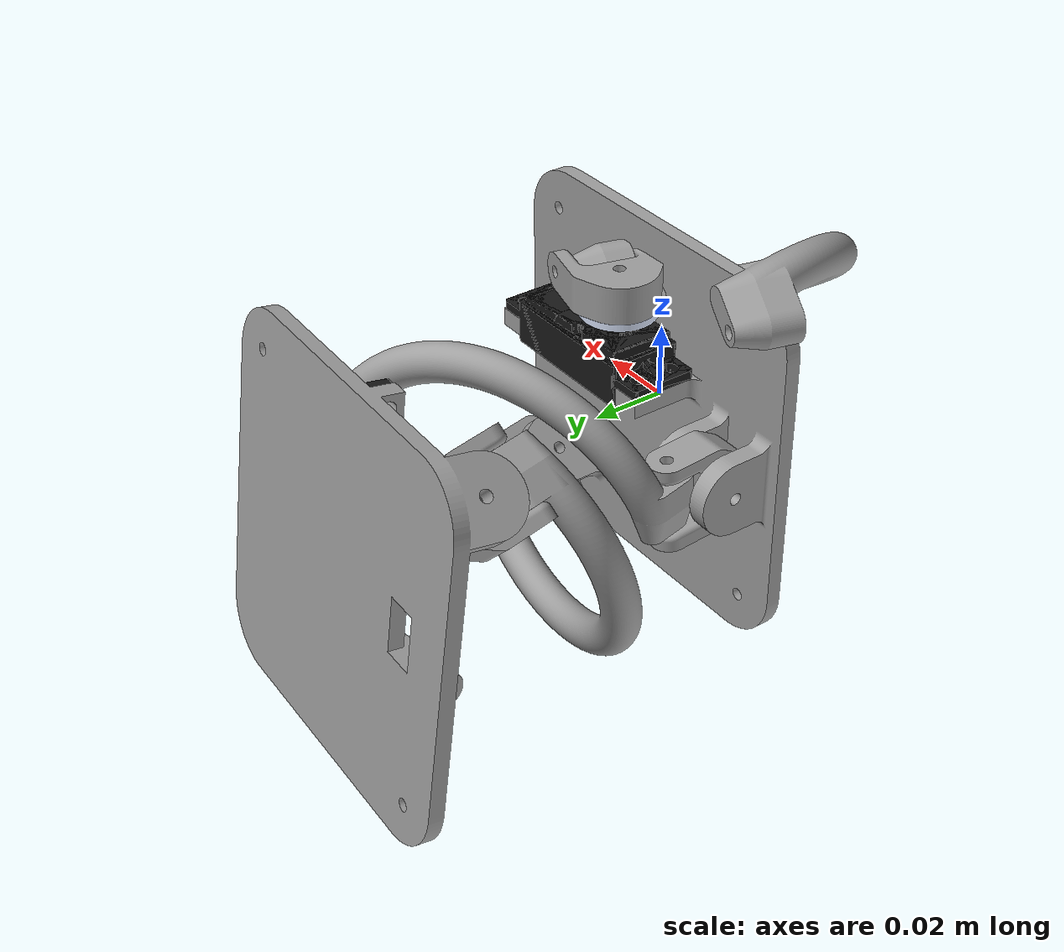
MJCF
<?xml version="1.0" ?>
<!-- Generated using onshape-to-robot -->
<!-- Onshape https://cad.onshape.com/documents/1f9c2954b6c1e4433dc4fb70/w/a7d17b54b83acd5ebc54338d/e/ec1e780a5db60bb6dd30ef9b -->
<mujoco model="my-robot">
  <compiler angle="radian" meshdir="assets" autolimits="true"/>
  <default>
    <default class="my-robot">
      <joint damping="0.01" frictionloss="0.01" armature="0.002"/>
      <position kp="50" dampratio="1"/>
      <default class="visual">
        <geom type="mesh" contype="0" conaffinity="0" group="2"/>
      </default>
      <default class="collision">
        <geom group="3"/>
      </default>
    </default>
  </default>
  <worldbody>
    <!-- Link fusioncomponent -->
    <body name="fusioncomponent" pos="0 0 0" quat="1 0 0 0" childclass="my-robot">
      <freejoint name="fusioncomponent_freejoint"/>
      <inertial pos="0 0 0" mass="0.12" fullinertia="0.00025 0.00025 0.00025 0 0 0"/>
      <!-- Part servo_motor_35kg_motor_v1 -->
      <geom type="mesh" class="visual" pos="0.00904239 0.014 -0.0174241" quat="0.707107 0.707107 -0 -0" mesh="servo_motor_35kg_motor_v1" material="servo_motor_35kg_motor_v1_material"/>
      <geom type="mesh" class="collision" pos="0.00904239 0.014 -0.0174241" quat="0.707107 0.707107 -0 -0" mesh="servo_motor_35kg_motor_v1" material="servo_motor_35kg_motor_v1_material"/>
      <!-- Part fusioncomponent -->
      <geom type="mesh" class="visual" pos="4.23865e-05 0.004 -0.000424131" quat="1 0 -0 0" mesh="fusioncomponent" material="fusioncomponent_material"/>
      <geom type="mesh" class="collision" pos="4.23865e-05 0.004 -0.000424131" quat="1 0 -0 0" mesh="fusioncomponent" material="fusioncomponent_material"/>
      <!-- Link fusioncomponent_2 -->
      <body name="fusioncomponent_2" pos="-0.0315576 0.014 -0.000424131" quat="0.0250809 0.706662 0.0250809 0.706662">
        <!-- Joint from fusioncomponent to fusioncomponent_2 -->
        <joint axis="0 0 1" name="10" type="hinge"/>
        <inertial pos="0 0 0" mass="0.08" fullinertia="0.00016 0.00016 0.00016 0 0 0"/>
        <!-- Part fusioncomponent_2 -->
        <geom type="mesh" class="visual" pos="-0 0.01 -0.0525" quat="0 0.92388 -0 0.382683" mesh="fusioncomponent__2" material="fusioncomponent__2_material"/>
        <geom type="mesh" class="collision" pos="-0 0.01 -0.0525" quat="0 0.92388 -0 0.382683" mesh="fusioncomponent__2" material="fusioncomponent__2_material"/>
        <!-- Link danda_v4 -->
        <body name="danda_v4" pos="-0.0075 -0.0109448 -0.005" quat="0.0568996 -0.704814 -0.0568996 0.704814">
          <!-- Joint from fusioncomponent_2 to danda_v4 -->
          <joint axis="0 0 1" name="9" type="hinge"/>
          <inertial pos="0 0 0" mass="0.05" fullinertia="0.0001 0.0001 0.0001 0 0 0"/>
          <!-- Part danda_v4 -->
          <geom type="mesh" class="visual" pos="-0.0365 0.0075 -0.0075" quat="1 0 -0 0" mesh="danda_v4" material="danda_v4_material"/>
          <geom type="mesh" class="collision" pos="-0.0365 0.0075 -0.0075" quat="1 0 -0 0" mesh="danda_v4" material="danda_v4_material"/>
        </body>
      </body>
      <!-- Link fusioncomponent_3 -->
      <body name="fusioncomponent_3" pos="0.0283974 0.014 -0.0287791" quat="0.921092 -0.0297031 -0.381529 0.0717096">
        <!-- Joint from fusioncomponent to fusioncomponent_3 -->
        <joint axis="0 0 1" name="6" type="hinge"/>
        <inertial pos="0 0 0" mass="0.08" fullinertia="0.00016 0.00016 0.00016 0 0 0"/>
        <!-- Part fusioncomponent_3 -->
        <geom type="mesh" class="visual" pos="-0 -0.01 0.0425" quat="0.92388 -0 0.382683 -0" mesh="fusioncomponent__2" material="fusioncomponent__2_material"/>
        <geom type="mesh" class="collision" pos="-0 -0.01 0.0425" quat="0.92388 -0 0.382683 -0" mesh="fusioncomponent__2" material="fusioncomponent__2_material"/>
        <!-- Link danda_support_v5 -->
        <body name="danda_support_v5" pos="0.0075 0.0125 -0.005" quat="0.706767 0.0219098 0.706767 0.0219098">
          <!-- Joint from fusioncomponent_3 to danda_support_v5 -->
          <joint axis="0 0 1" name="5" type="hinge"/>
          <inertial pos="0 0 0" mass="0.05" fullinertia="0.0001 0.0001 0.0001 0 0 0"/>
          <!-- Part danda_support_v5 -->
          <geom type="mesh" class="visual" pos="-0.045 0.0075 -0.0075" quat="1 -0 0 0" mesh="danda_support_v5" material="danda_support_v5_material"/>
          <geom type="mesh" class="collision" pos="-0.045 0.0075 -0.0075" quat="1 -0 0 0" mesh="danda_support_v5" material="danda_support_v5_material"/>
          <!-- Link fusioncomponent_4 -->
          <body name="fusioncomponent_4" pos="-0.09 0.055 -0" quat="0 1 0 0">
            <!-- Joint from danda_support_v5 to fusioncomponent_4 -->
            <joint axis="0 0 1" name="1" type="hinge"/>
            <inertial pos="0 0 0" mass="0.08" fullinertia="0.00016 0.00016 0.00016 0 0 0"/>
            <!-- Part fusioncomponent_4 -->
            <geom type="mesh" class="visual" pos="0.0475 -0.0225 0.0075" quat="0.382683 -0 0.92388 -0" mesh="fusioncomponent__2" material="fusioncomponent__2_material"/>
            <geom type="mesh" class="collision" pos="0.0475 -0.0225 0.0075" quat="0.382683 -0 0.92388 -0" mesh="fusioncomponent__2" material="fusioncomponent__2_material"/>
            <!-- Link fusioncomponent_5 -->
            <body name="fusioncomponent_5" pos="0.005 -0.0125 0.0075" quat="0 0.707107 0 -0.707107">
              <!-- Joint from fusioncomponent_4 to fusioncomponent_5 -->
              <joint axis="0 0 1" name="2" type="hinge"/>
              <inertial pos="0 0 0" mass="0.12" fullinertia="0.00025 0.00025 0.00025 0 0 0"/>
              <!-- Part fusioncomponent_5 -->
              <geom type="mesh" class="visual" pos="0.00286148 0.00958185 -0.0401" quat="0.0553335 0.914171 -0.133587 0.378662" mesh="fusioncomponent" material="fusioncomponent_material"/>
              <geom type="mesh" class="collision" pos="0.00286148 0.00958185 -0.0401" quat="0.0553335 0.914171 -0.133587 0.378662" mesh="fusioncomponent" material="fusioncomponent_material"/>
              <!-- Part servo_motor_35kg_motor_v1_2 -->
              <geom type="mesh" class="visual" pos="-0.00542032 0.0016187 -0.0217152" quat="0.60729 -0.685543 -0.173294 -0.362215" mesh="servo_motor_35kg_motor_v1" material="servo_motor_35kg_motor_v1_material"/>
              <geom type="mesh" class="collision" pos="-0.00542032 0.0016187 -0.0217152" quat="0.60729 -0.685543 -0.173294 -0.362215" mesh="servo_motor_35kg_motor_v1" material="servo_motor_35kg_motor_v1_material"/>
              <!-- Link fusioncomponent_6 -->
              <body name="fusioncomponent_6" pos="-0.0214102 0.00639385 -0.0624446" quat="0.92219 0.0871403 0.37263 -0.0558427">
                <!-- Joint from fusioncomponent_5 to fusioncomponent_6 -->
                <joint axis="0 0 1" name="3" type="hinge"/>
                <inertial pos="0 0 0" mass="0.08" fullinertia="0.00016 0.00016 0.00016 0 0 0"/>
                <!-- Part fusioncomponent_6 -->
                <geom type="mesh" class="visual" pos="-0 0.01 -0.0525" quat="0 0.92388 -0 0.382683" mesh="fusioncomponent__2" material="fusioncomponent__2_material"/>
                <geom type="mesh" class="collision" pos="-0 0.01 -0.0525" quat="0 0.92388 -0 0.382683" mesh="fusioncomponent__2" material="fusioncomponent__2_material"/>
              </body>
            </body>
          </body>
        </body>
      </body>
    </body>
    <!-- Link fusioncomponent_7 -->
    <body name="fusioncomponent_7" pos="0 0 0" quat="1 0 0 0" childclass="my-robot">
      <freejoint name="fusioncomponent_7_freejoint"/>
      <inertial pos="0 0 0" mass="0.08" fullinertia="0.00016 0.00016 0.00016 0 0 0"/>
      <!-- Part fusioncomponent_7 -->
      <geom type="mesh" class="visual" pos="-0.00963828 0.0165631 -0.0113241" quat="0.233357 -0.732233 -0.563372 -0.303301" mesh="fusioncomponent__2" material="fusioncomponent__2_material"/>
      <geom type="mesh" class="collision" pos="-0.00963828 0.0165631 -0.0113241" quat="0.233357 -0.732233 -0.563372 -0.303301" mesh="fusioncomponent__2" material="fusioncomponent__2_material"/>
      <!-- Link servo_motor_35kg_motor_v1 -->
      <body name="servo_motor_35kg_motor_v1" pos="2.7655e-05 0.014 0.0311759" quat="0.792563 -0 0 0.60979">
        <!-- Joint from fusioncomponent_7 to servo_motor_35kg_motor_v1 -->
        <joint axis="0 0 1" name="8" type="hinge"/>
        <inertial pos="0 0 0" mass="0.09" fullinertia="0.00018 0.00018 0.00018 0 0 0"/>
        <!-- Part default -->
        <geom type="mesh" class="visual" pos="-0 0 0" quat="0 0.60979 0.792563 0" mesh="default" material="default_material"/>
        <geom type="mesh" class="collision" pos="-0 0 0" quat="0 0.60979 0.792563 0" mesh="default" material="default_material"/>
        <!-- Part servo_motor_35kg_motor_v1_3 -->
        <geom type="mesh" class="visual" pos="0.00231059 -0.00871359 -0.0486" quat="0.560427 0.560427 -0.431187 -0.431187" mesh="servo_motor_35kg_motor_v1" material="servo_motor_35kg_motor_v1_material"/>
        <geom type="mesh" class="collision" pos="0.00231059 -0.00871359 -0.0486" quat="0.560427 0.560427 -0.431187 -0.431187" mesh="servo_motor_35kg_motor_v1" material="servo_motor_35kg_motor_v1_material"/>
      </body>
      <!-- Link danda_v4_2 -->
      <body name="danda_v4_2" pos="0.0140324 0.0180455 0.0361759" quat="0.661926 -0.576067 0.410057 0.248705">
        <!-- Joint from fusioncomponent_7 to danda_v4_2 -->
        <joint axis="0 0 1" name="7" type="hinge"/>
        <inertial pos="0 0 0" mass="0.05" fullinertia="0.0001 0.0001 0.0001 0 0 0"/>
        <!-- Part danda_v4_2 -->
        <geom type="mesh" class="visual" pos="-0.0365 0.0075 -0.0075" quat="1 0 -0 0" mesh="danda_v4" material="danda_v4_material"/>
        <geom type="mesh" class="collision" pos="-0.0365 0.0075 -0.0075" quat="1 0 -0 0" mesh="danda_v4" material="danda_v4_material"/>
      </body>
    </body>
    <!-- Link fusioncomponent_8 -->
    <body name="fusioncomponent_8" pos="0 0 0" quat="1 0 0 0" childclass="my-robot">
      <freejoint name="fusioncomponent_8_freejoint"/>
      <inertial pos="0 0 0" mass="0.08" fullinertia="0.00016 0.00016 0.00016 0 0 0"/>
      <!-- Part fusioncomponent_8 -->
      <geom type="mesh" class="visual" pos="-0.0215391 0.100655 -0.00697951" quat="0.0385516 0.918466 -0.0432613 -0.391232" mesh="fusioncomponent__2" material="fusioncomponent__2_material"/>
      <geom type="mesh" class="collision" pos="-0.0215391 0.100655 -0.00697951" quat="0.0385516 0.918466 -0.0432613 -0.391232" mesh="fusioncomponent__2" material="fusioncomponent__2_material"/>
      <!-- Link servo_motor_35kg_motor_v1_2 -->
      <body name="servo_motor_35kg_motor_v1_2" pos="0.0204053 0.0885387 -0.006667" quat="0.698834 -0.0190617 0.712933 -0.0547213">
        <!-- Joint from fusioncomponent_8 to servo_motor_35kg_motor_v1_2 -->
        <joint axis="0 0 1" name="4" type="hinge"/>
        <inertial pos="0 0 0" mass="0.09" fullinertia="0.00018 0.00018 0.00018 0 0 0"/>
        <!-- Part default_2 -->
        <geom type="mesh" class="visual" pos="0 -0 0" quat="0 0.992656 0.120971 0" mesh="default" material="default_material"/>
        <geom type="mesh" class="collision" pos="0 -0 0" quat="0 0.992656 0.120971 0" mesh="default" material="default_material"/>
        <!-- Part servo_motor_35kg_motor_v1_4 -->
        <geom type="mesh" class="visual" pos="-0.00875089 -0.00216503 -0.0486" quat="0.0855395 0.0855395 -0.701914 -0.701914" mesh="servo_motor_35kg_motor_v1" material="servo_motor_35kg_motor_v1_material"/>
        <geom type="mesh" class="collision" pos="-0.00875089 -0.00216503 -0.0486" quat="0.0855395 0.0855395 -0.701914 -0.701914" mesh="servo_motor_35kg_motor_v1" material="servo_motor_35kg_motor_v1_material"/>
      </body>
    </body>
  </worldbody>
  <asset>
    <mesh file="default.stl"/>
    <mesh file="fusioncomponent__2.stl"/>
    <mesh file="fusioncomponent.stl"/>
    <mesh file="danda_support_v5.stl"/>
    <mesh file="servo_motor_35kg_motor_v1.stl"/>
    <mesh file="danda_v4.stl"/>
    <material name="servo_motor_35kg_motor_v1_material" rgba="0.101961 0.101961 0.101961 1"/>
    <material name="fusioncomponent_material" rgba="0.627451 0.627451 0.627451 1"/>
    <material name="fusioncomponent__2_material" rgba="0.627451 0.627451 0.627451 1"/>
    <material name="danda_v4_material" rgba="0.627451 0.627451 0.627451 1"/>
    <material name="danda_support_v5_material" rgba="0.627451 0.627451 0.627451 1"/>
    <material name="default_material" rgba="0.866667 0.909804 1 1"/>
  </asset>
  <actuator>
    <!-- only real motors -->
    <motor class="my-robot" name="8_motor" joint="8" gear="1" ctrllimited="true" ctrlrange="-1 1"/>
    <motor class="my-robot" name="4_motor" joint="4" gear="1" ctrllimited="true" ctrlrange="-1 1"/>
  </actuator>
  <equality>
    <!-- closes the side branches to the main chain so horns stay attached -->
    <weld name="close_branch_7" body1="fusioncomponent_7" body2="fusioncomponent_6" solref="0.005 1" solimp="0.95 0.99 0.001"/>
    <weld name="close_branch_8" body1="fusioncomponent_8" body2="fusioncomponent_2" solref="0.005 1" solimp="0.95 0.99 0.001"/>
  </equality>
</mujoco>
